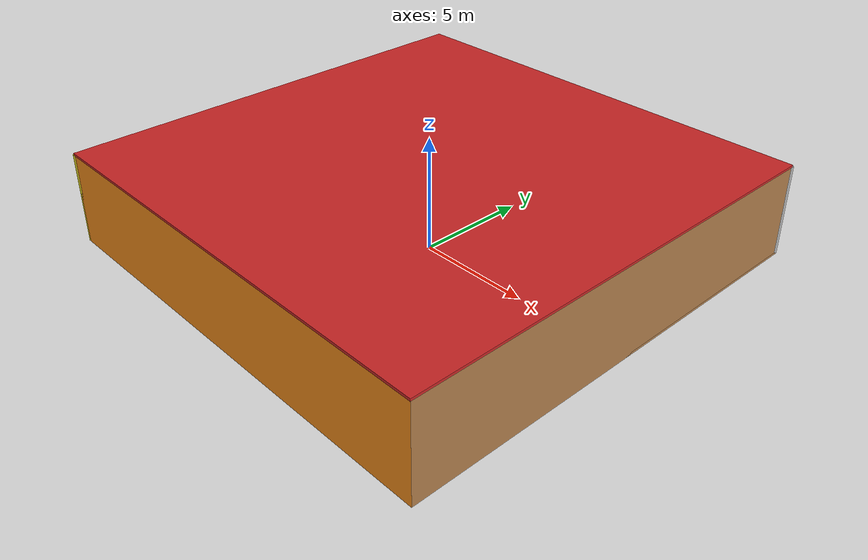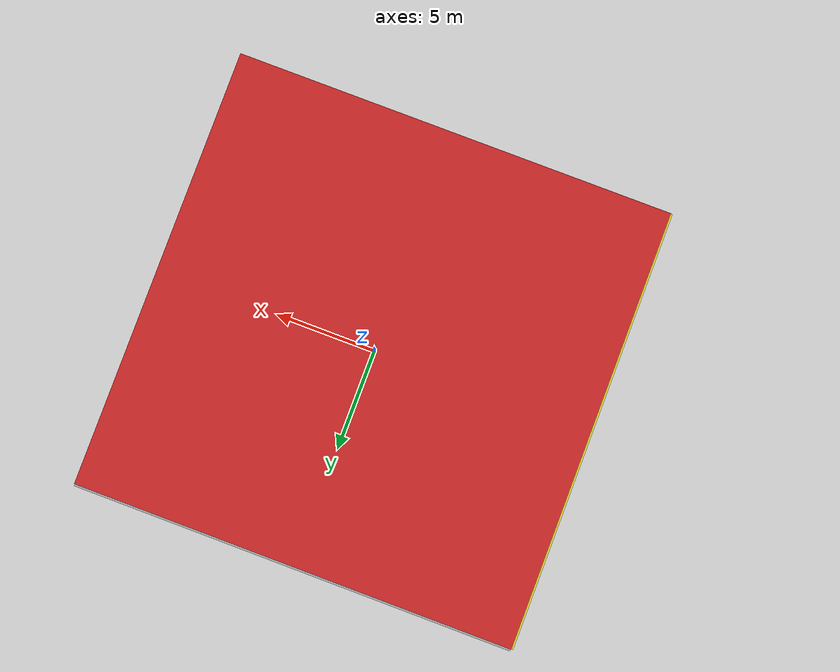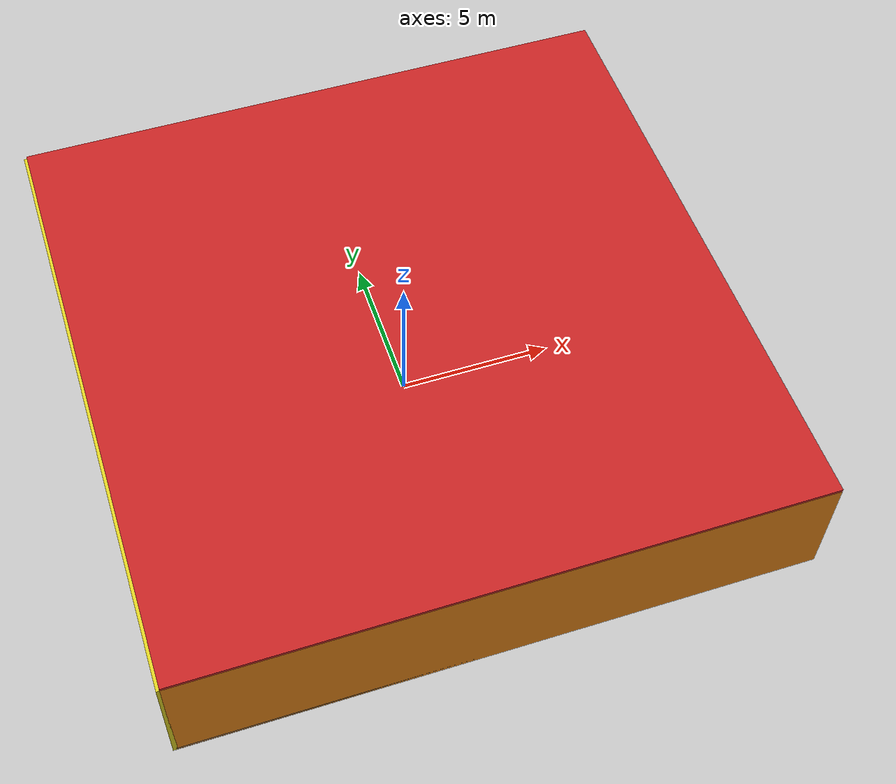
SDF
<sdf version="1.4">
 <world name="default">
  <physics type="ode">
   <max_step_size>0.001</max_step_size>
   <real_time_factor>1</real_time_factor>
   <real_time_update_rate>1000</real_time_update_rate>
   <gravity>0 0 -9.8</gravity>
  </physics>
  <scene><ambient>0.4 0.4 0.4 1</ambient><background>0.7 0.7 0.7 1</background><shadows>1</shadows></scene>
  <model name="Surrounding">
   <static>1</static>
   <link name="Ceiling">
    <collision name="Ceiling_Collision"><geometry><box><size>20 20 0.1</size></box></geometry></collision>
    <visual name="Ceiling_Visual">
     <geometry><box><size>20 20 0.1</size></box></geometry>
     <material>
      <script><uri>file://media/materials/scripts/gazebo.material</uri><name>Gazebo/RedBright</name></script>
     </material>
    </visual>
    <pose>0 0 4.05 0 0 0</pose>
   </link>
   <link name="Wall_South">
    <collision name="Wall_South_Collision">
     <geometry><box><size>20 0 4</size></box></geometry>
     <pose>0 0 2 0 -0 0</pose>
    </collision>
    <visual name="Wall_South_Visual">
     <pose>0 0 2 0 -0 0</pose>
     <geometry><box><size>20 0 4</size></box></geometry>
     <material>
      <script><uri>file://media/materials/scripts/gazebo.material</uri><name>Gazebo/Orange</name></script>
     </material>
    </visual>
    <velocity_decay><linear>0</linear><angular>0</angular></velocity_decay>
    <pose>0 -10 0 0 -0 0</pose>
   </link>
   <link name="Wall_East">
    <collision name="Wall_21_Collision">
     <geometry><box><size>20 0 4</size></box></geometry>
     <pose>0 0 2 0 -0 0</pose>
    </collision>
    <visual name="Wall_21_Visual">
     <pose>0 0 2 0 -0 0</pose>
     <geometry><box><size>20 0 4</size></box></geometry>
     <material>
      <script><uri>file://media/materials/scripts/gazebo.material</uri><name>Gazebo/Wood</name></script>
     </material>
    </visual>
    <velocity_decay><linear>0</linear><angular>0</angular></velocity_decay>
    <pose>10 0 0 0 -0 1.5708</pose>
   </link>
   <link name="Wall_North">
    <collision name="Wall_22_Collision">
     <geometry><box><size>20 0.2 4</size></box></geometry>
     <pose>0 0 2 0 -0 0</pose>
    </collision>
    <visual name="Wall_22_Visual">
     <pose>0 0 2 0 -0 0</pose>
     <geometry><box><size>20 0.2 4</size></box></geometry>
     <material>
      <script><uri>file://media/materials/scripts/gazebo.material</uri><name>Gazebo/LightOn</name></script>
     </material>
    </visual>
    <velocity_decay><linear>0</linear><angular>0</angular></velocity_decay>
    <pose>0 10 0 0 -0 0</pose>
   </link>
   <link name="Wall_West">
    <collision name="Wall_23_Collision">
     <geometry><box><size>20 0.2 4</size></box></geometry>
     <pose>0 0 2 0 -0 0</pose>
    </collision>
    <visual name="Wall_23_Visual">
     <pose>0 0 2 0 -0 0</pose>
     <geometry><box><size>20 0.2 4</size></box></geometry>
     <material>
      <script><uri>file://media/materials/scripts/gazebo.material</uri><name>Gazebo/Yellow</name></script>
     </material>
    </visual>
    <velocity_decay><linear>0</linear><angular>0</angular></velocity_decay>
    <pose>-10 0 0 0 0 -1.5708</pose>
   </link>
   <link name="Ground_link">
    <collision name="collision">
     <pose>0 0 .05 0 -0 0</pose>
     <geometry><box><size>20 20 0.1</size></box></geometry>
    </collision>
    <visual name="visual">
     <pose>0 0 .05 0 -0 0</pose>
     <geometry><box><size>20 20 0.1</size></box></geometry>
     <material>
      <script><uri>file://media/materials/scripts/gazebo.material</uri><name>Gazebo/WoodFloor</name></script>
     </material>
    </visual>
   </link>
   <static>1</static>
  </model>
  <spherical_coordinates>
   <surface_model>EARTH_WGS84</surface_model>
   <latitude_deg>0</latitude_deg>
   <longitude_deg>0</longitude_deg>
   <elevation>0</elevation>
   <heading_deg>0</heading_deg>
  </spherical_coordinates>
  <light name="lightball_0" type="diffuse">
   <diffuse>0.8 0.8 0.8 1</diffuse>
   <specular>0.2 0.2 0.2 1</specular>
   <attenuation>
    <range>100</range>
    <constant>0.7</constant>
    <linear>0.01</linear>
    <quadratic>0.001</quadratic>
   </attenuation>
   <direction>-0.5 0.1 -0.9</direction>
   <pose>6.682574511 -9.24698419269 0.719747888416 0 0 0</pose>
  </light>
  <light name="lightball_1" type="diffuse">
   <diffuse>0.8 0.8 0.8 1</diffuse>
   <specular>0.2 0.2 0.2 1</specular>
   <attenuation>
    <range>100</range>
    <constant>0.7</constant>
    <linear>0.01</linear>
    <quadratic>0.001</quadratic>
   </attenuation>
   <direction>-0.5 0.1 -0.9</direction>
   <pose>3.08453462421 -5.95158523214 1.53277565303 0 0 0</pose>
  </light>
  <light name="lightball_2" type="diffuse">
   <diffuse>0.8 0.8 0.8 1</diffuse>
   <specular>0.2 0.2 0.2 1</specular>
   <attenuation>
    <range>100</range>
    <constant>0.7</constant>
    <linear>0.01</linear>
    <quadratic>0.001</quadratic>
   </attenuation>
   <direction>-0.5 0.1 -0.9</direction>
   <pose>6.42632270185 3.32022399406 2.59171346161 0 0 0</pose>
  </light>
  <light name="lightball_3" type="diffuse">
   <diffuse>0.8 0.8 0.8 1</diffuse>
   <specular>0.2 0.2 0.2 1</specular>
   <attenuation>
    <range>100</range>
    <constant>0.7</constant>
    <linear>0.01</linear>
    <quadratic>0.001</quadratic>
   </attenuation>
   <direction>-0.5 0.1 -0.9</direction>
   <pose>5.08112885502 2.74651571858 1.84800285525 0 0 0</pose>
  </light>
  <light name="lightball_4" type="diffuse">
   <diffuse>0.8 0.8 0.8 1</diffuse>
   <specular>0.2 0.2 0.2 1</specular>
   <attenuation>
    <range>100</range>
    <constant>0.7</constant>
    <linear>0.01</linear>
    <quadratic>0.001</quadratic>
   </attenuation>
   <direction>-0.5 0.1 -0.9</direction>
   <pose>5.93678684397 6.78558736295 2.11898873866 0 0 0</pose>
  </light>
  <include><uri>model://table</uri><pose>-4.48545135999 -2.29676163464 0 0 0 0.918706564965</pose></include>
  <include>
   <uri>model://construction_cone</uri>
   <pose>-2.00927096779 7.11964791469 0 0 0 2.11040115695</pose>
  </include>
  <include><uri>model://cabinet</uri><pose>1.71437715043 5.0799610733 0 0 0 2.55927138935</pose></include>
  <include>
   <uri>model://construction_cone</uri>
   <pose>7.17428454018 -3.74826559914 0 0 0 2.19954009395</pose>
  </include>
 </world>
</sdf>

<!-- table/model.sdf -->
<sdf version="1.5">
  <model name="table">
    <static>true</static>
    <link name="link">
      <collision name="surface">
        <pose>0 0 1.0 0 0 0</pose>
        <geometry>
          <box>
            <size>1.5 0.8 0.03</size>
          </box>
        </geometry>
        <surface>
          <friction>
            <ode>
              <mu>0.6</mu>
              <mu2>0.6</mu2>
            </ode>
          </friction>
        </surface>
      </collision>
      <visual name="visual1">
        <pose>0 0 1.0 0 0 0</pose>
        <geometry>
          <box>
            <size>1.5 0.8 0.03</size>
          </box>
        </geometry>
        <material>
          <script>
            <uri>model://media/materials/scripts/gazebo.material</uri>
            <name>Gazebo/Wood</name>
          </script>
        </material>
      </visual>
      <collision name="front_left_leg">
        <pose>0.68 0.38 0.5 0 0 0</pose>
        <geometry>
          <cylinder>
            <radius>0.02</radius>
            <length>1.0</length>
          </cylinder>
        </geometry>
      </collision>
      <visual name="front_left_leg">
        <pose>0.68 0.38 0.5 0 0 0</pose>
        <geometry>
          <cylinder>
            <radius>0.02</radius>
            <length>1.0</length>
          </cylinder>
        </geometry>
        <material>
          <script>
            <uri>model://media/materials/scripts/gazebo.material</uri>
            <name>Gazebo/Grey</name>
          </script>
        </material>
      </visual>
      <collision name="front_right_leg">
        <pose>0.68 -0.38 0.5 0 0 0</pose>
        <geometry>
          <cylinder>
            <radius>0.02</radius>
            <length>1.0</length>
          </cylinder>
        </geometry>
      </collision>
      <visual name="front_right_leg">
        <pose>0.68 -0.38 0.5 0 0 0</pose>
        <geometry>
          <cylinder>
            <radius>0.02</radius>
            <length>1.0</length>
          </cylinder>
        </geometry>
        <material>
          <script>
            <uri>model://media/materials/scripts/gazebo.material</uri>
            <name>Gazebo/Grey</name>
          </script>
        </material>
      </visual>
      <collision name="back_right_leg">
        <pose>-0.68 -0.38 0.5 0 0 0</pose>
        <geometry>
          <cylinder>
            <radius>0.02</radius>
            <length>1.0</length>
          </cylinder>
        </geometry>
      </collision>
      <visual name="back_right_leg">
        <pose>-0.68 -0.38 0.5 0 0 0</pose>
        <geometry>
          <cylinder>
            <radius>0.02</radius>
            <length>1.0</length>
          </cylinder>
        </geometry>
        <material>
          <script>
            <uri>model://media/materials/scripts/gazebo.material</uri>
            <name>Gazebo/Grey</name>
          </script>
        </material>
      </visual>
      <collision name="back_left_leg">
        <pose>-0.68 0.38 0.5 0 0 0</pose>
        <geometry>
          <cylinder>
            <radius>0.02</radius>
            <length>1.0</length>
          </cylinder>
        </geometry>
      </collision>
      <visual name="back_left_leg">
        <pose>-0.68 0.38 0.5 0 0 0</pose>
        <geometry>
          <cylinder>
            <radius>0.02</radius>
            <length>1.0</length>
          </cylinder>
        </geometry>
        <material>
          <script>
            <uri>model://media/materials/scripts/gazebo.material</uri>
            <name>Gazebo/Grey</name>
          </script>
        </material>
      </visual>
    </link>
  </model>
</sdf>

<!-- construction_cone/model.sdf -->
<sdf version="1.5">
  <model name="Construction Cone">
    <link name="link">
      <collision name="collision">
        <geometry>
          <mesh>
            <scale>10 10 10</scale>
            <uri>file://isr-testbed/construction_cone/meshes/construction_cone.dae</uri>
          </mesh>
        </geometry>
      </collision>
      <visual name="visual">
        <geometry>
          <mesh>
            <scale>10 10 10</scale>
            <uri>file://isr-testbed/construction_cone/meshes/construction_cone.dae</uri>
          </mesh>
        </geometry>
      </visual>
    </link>
  </model>
</sdf>

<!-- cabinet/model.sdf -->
<sdf version="1.5">
  <model name="cabinet">
    <static>true</static>
    <link name="cabinet_bottom_plate">
      <inertial>
        <pose>0 0 -1 0 0 0</pose>
        <inertia>
          <ixx>2.050000</ixx>
          <ixy>0</ixy>
          <ixz>0</ixz>
          <iyy>2.050000</iyy>
          <iyz>0</iyz>
          <izz>2.050000</izz>
        </inertia>
        <mass>25.000000</mass>
      </inertial>
      <collision name="cabinet_bottom_plate_geom">
        <pose>0 0 0.010000 0 0 0</pose>
        <geometry>
          <box>
            <size>0.450000 0.450000 0.020000</size>
          </box>
        </geometry>
      </collision>
      <visual name="cabinet_bottom_plate_geom_visual">
        <pose>0 0 0.010000 0 0 0</pose>
        <geometry>
          <box>
            <size>0.450000 0.450000 0.020000</size>
          </box>
        </geometry>
        <material>
          <script>
            <uri>model://media/materials/scripts/gazebo.material</uri>
            <name>Gazebo/Wood</name>
          </script>
        </material>
      </visual>
      <collision name="cabinet_bottom_plate_geom_cabinet_back_plate">
        <pose>0.235000 0 0.510000 0 0 0</pose>
        <geometry>
          <box>
            <size>0.020000 0.450000 1.020000</size>
          </box>
        </geometry>
      </collision>
      <visual name="cabinet_bottom_plate_geom_cabinet_back_plate_visual">
        <pose>0.235000 0 0.510000 0 0 0</pose>
        <geometry>
          <box>
            <size>0.020000 0.450000 1.020000</size>
          </box>
        </geometry>
        <material>
          <script>
            <uri>model://media/materials/scripts/gazebo.material</uri>
            <name>Gazebo/Wood</name>
          </script>
        </material>
      </visual>
      <collision name="cabinet_bottom_plate_geom_cabinet_left_plate">
        <pose>0 0.235000 0.510000 0 0 0</pose>
        <geometry>
          <box>
            <size>0.450000 0.020000 1.020000</size>
          </box>
        </geometry>
      </collision>
      <visual name="cabinet_bottom_plate_geom_cabinet_left_plate_visual">
        <pose>0 0.235000 0.510000 0 0 0</pose>
        <geometry>
          <box>
            <size>0.450000 0.020000 1.020000</size>
          </box>
        </geometry>
        <material>
          <script>
            <uri>model://media/materials/scripts/gazebo.material</uri>
            <name>Gazebo/Wood</name>
          </script>
        </material>
      </visual>
      <collision name="cabinet_bottom_plate_geom_cabinet_middle_plate">
        <pose>0 0 0.510000 0 0 0</pose>
        <geometry>
          <box>
            <size>0.450000 0.450000 0.020000</size>
          </box>
        </geometry>
      </collision>
      <visual name="cabinet_bottom_plate_geom_cabinet_middle_plate_visual">
        <pose>0 0 0.510000 0 0 0</pose>
        <geometry>
          <box>
            <size>0.450000 0.450000 0.020000</size>
          </box>
        </geometry>
        <material>
          <script>
            <uri>model://media/materials/scripts/gazebo.material</uri>
            <name>Gazebo/Wood</name>
          </script>
        </material>
      </visual>
      <collision name="cabinet_bottom_plate_geom_cabinet_right_plate">
        <pose>0 -0.235000 0.510000 0 0 0</pose>
        <geometry>
          <box>
            <size>0.450000 0.020000 1.020000</size>
          </box>
        </geometry>
      </collision>
      <visual name="cabinet_bottom_plate_geom_cabinet_right_plate_visual">
        <pose>0 -0.235000 0.510000 0 0 0</pose>
        <geometry>
          <box>
            <size>0.450000 0.020000 1.020000</size>
          </box>
        </geometry>
        <material>
          <script>
            <uri>model://media/materials/scripts/gazebo.material</uri>
            <name>Gazebo/Wood</name>
          </script>
        </material>
      </visual>
      <collision name="cabinet_bottom_plate_geom_cabinet_top_plate">
        <pose>0 0 1.010000 0 0 0</pose>
        <geometry>
          <box>
            <size>0.450000 0.450000 0.020000</size>
          </box>
        </geometry>
      </collision>
      <visual name="cabinet_bottom_plate_geom_cabinet_top_plate_visual">
        <pose>0 0 1.010000 0 0 0</pose>
        <geometry>
          <box>
            <size>0.450000 0.450000 0.020000</size>
          </box>
        </geometry>
        <material>
          <script>
            <uri>model://media/materials/scripts/gazebo.material</uri>
            <name>Gazebo/Wood</name>
          </script>
        </material>
      </visual>
    </link>
  </model>
</sdf>
